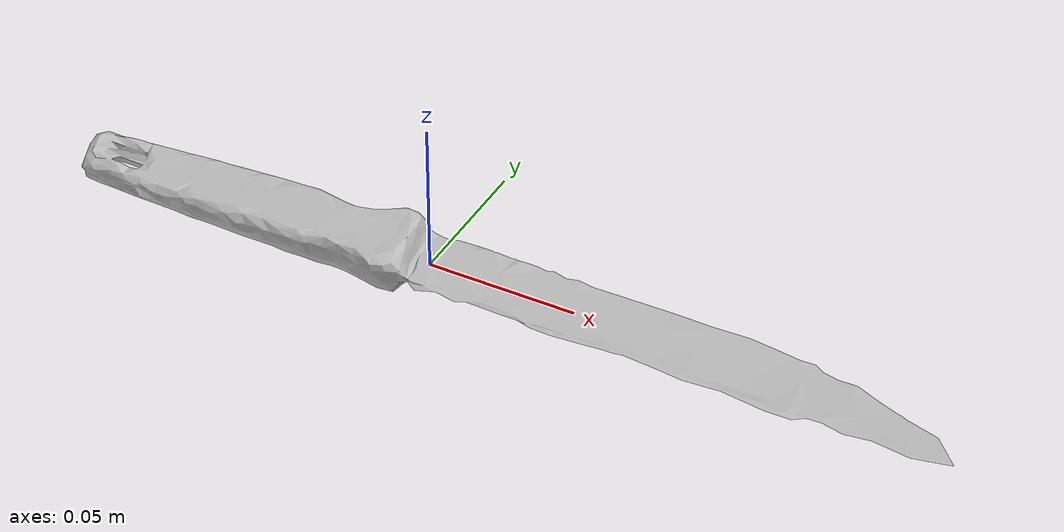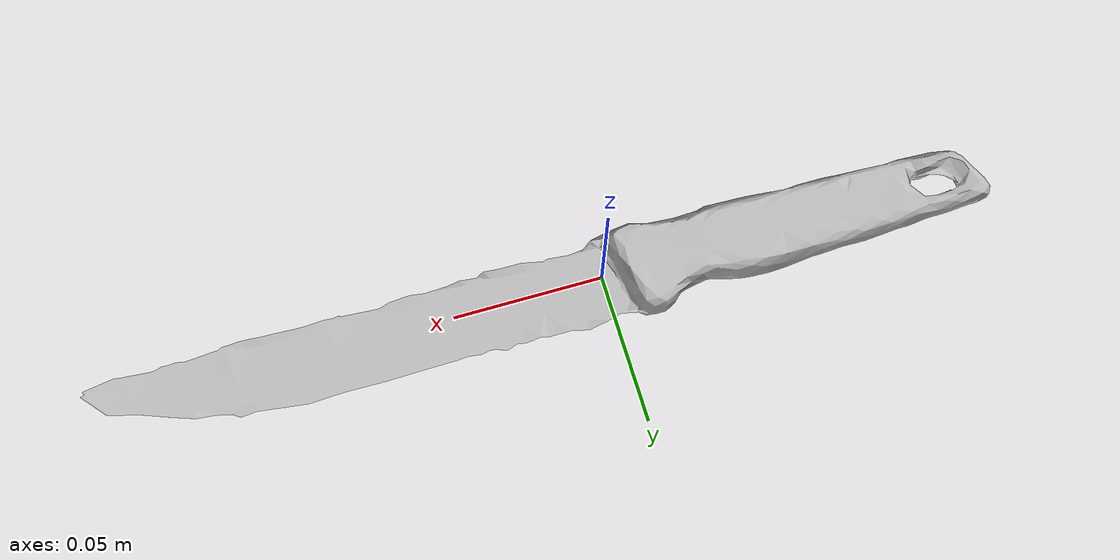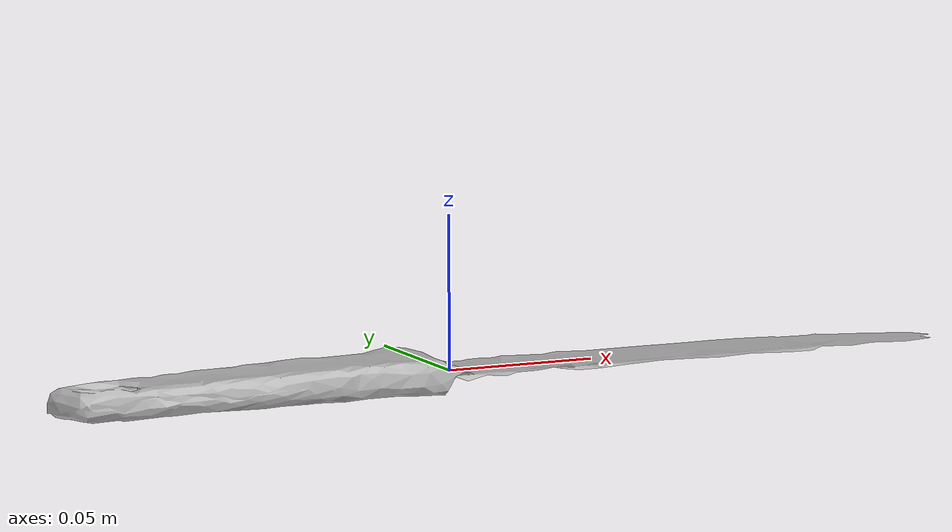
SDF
<?xml version='1.0'?>
<sdf version='1.6'>
    <model name='b_knife'>
        <static>false</static>
        <pose>0 0 0 0 0 0</pose>

        <link name='link'>
            <inertial>
                <mass>0.40</mass>
                <pose>0.000382297035518770	-0.000149204207528814	0.00495379249275721 0 0 0</pose>
                <inertia>
                    <ixx>7.972462473661376e-05</ixx>
                    <ixy>0.0</ixy>
                    <ixz>0.0</ixz>
                    <iyy>9.743942735555959e-05</iyy>
                    <iyz>0.0</iyz>
                    <izz>3.897022921041362e-05</izz>
                </inertia>
            </inertial>
            <sensor name="tool_contact_sensor" type="contact">
				<always_on>true</always_on>
				<update_rate>30.0</update_rate>
				<contact>
					<collision>collision</collision>
				</contact>
				<plugin name="tool_bumper" filename="libgazebo_ros_bumper.so">
					<bumperTopicName>tool_contact_sensor_state</bumperTopicName>
					<frameName>world</frameName>
				</plugin>
			</sensor>
            <collision name='collision'>
                <geometry>
                    <mesh>
                        <uri>model://b_knife/b_knife.dae</uri>
                    </mesh>
                </geometry>
                <surface>
                    <friction>
                        <ode>
                            <mu>0.2</mu>
                            <mu2>0.2</mu2>
                        </ode>
                    </friction>
                </surface>
            </collision>
            <visual name='visual'>
                <geometry>
                    <mesh>
                        <uri>model://b_knife/b_knife.dae</uri>
                    </mesh>
                </geometry>
            </visual>
        </link>
    </model>
</sdf>
